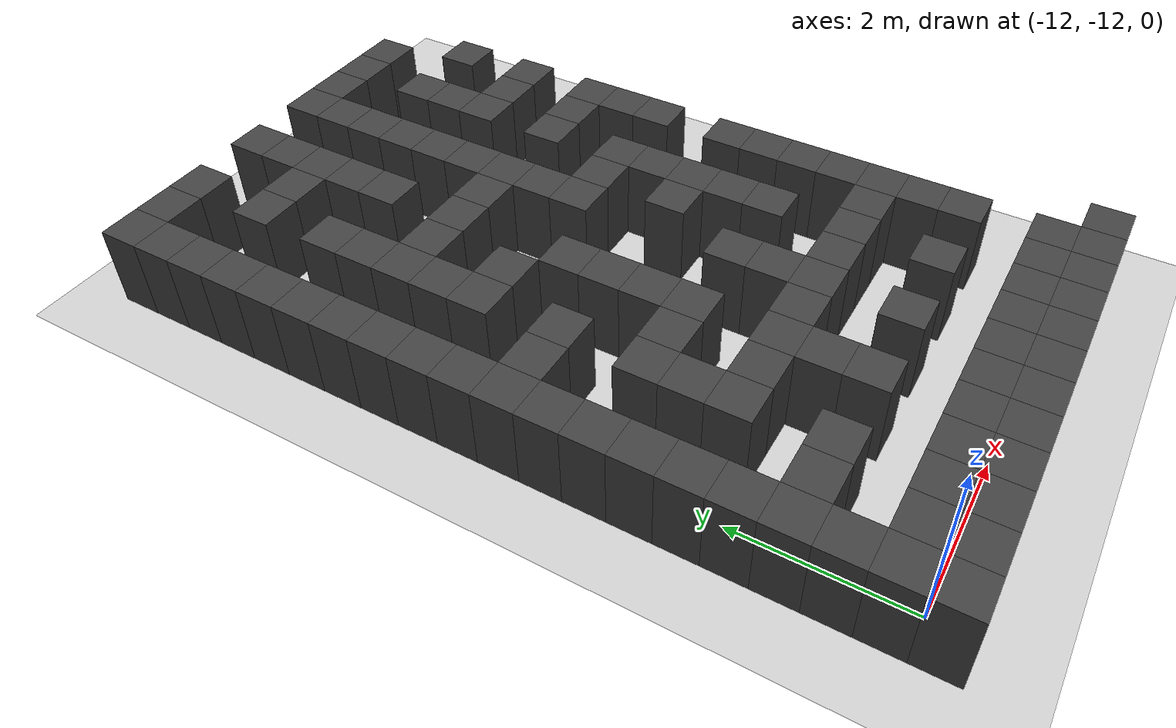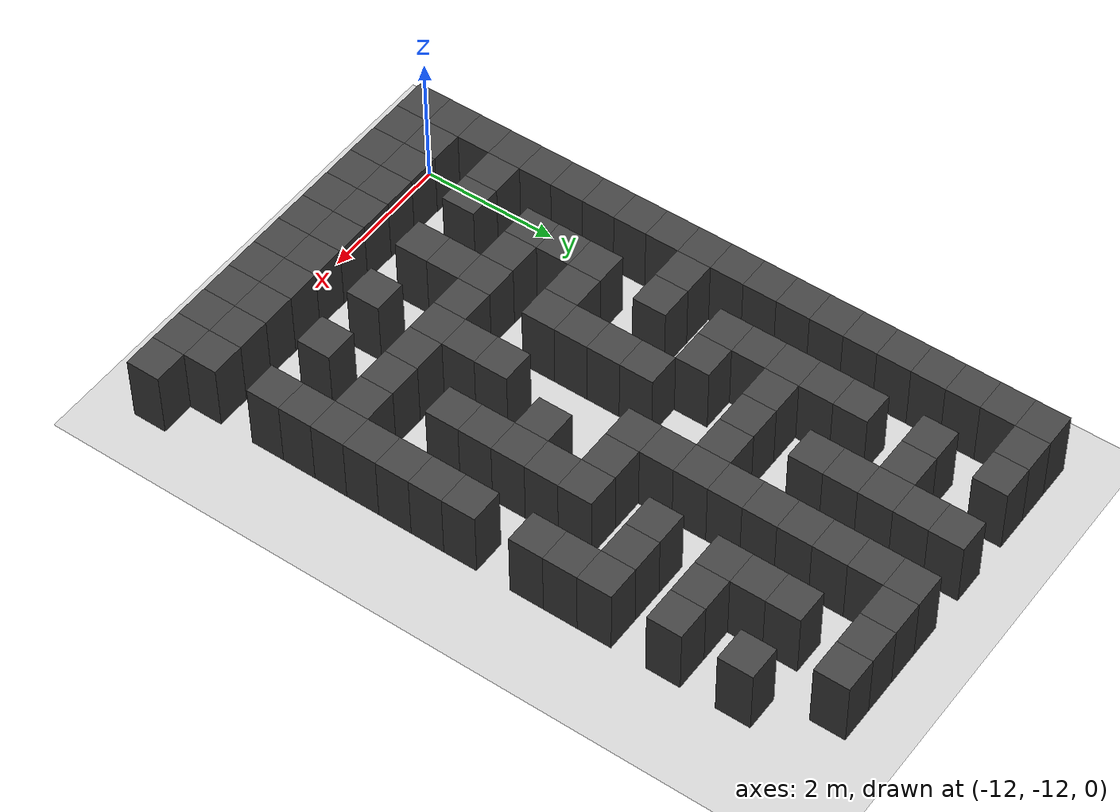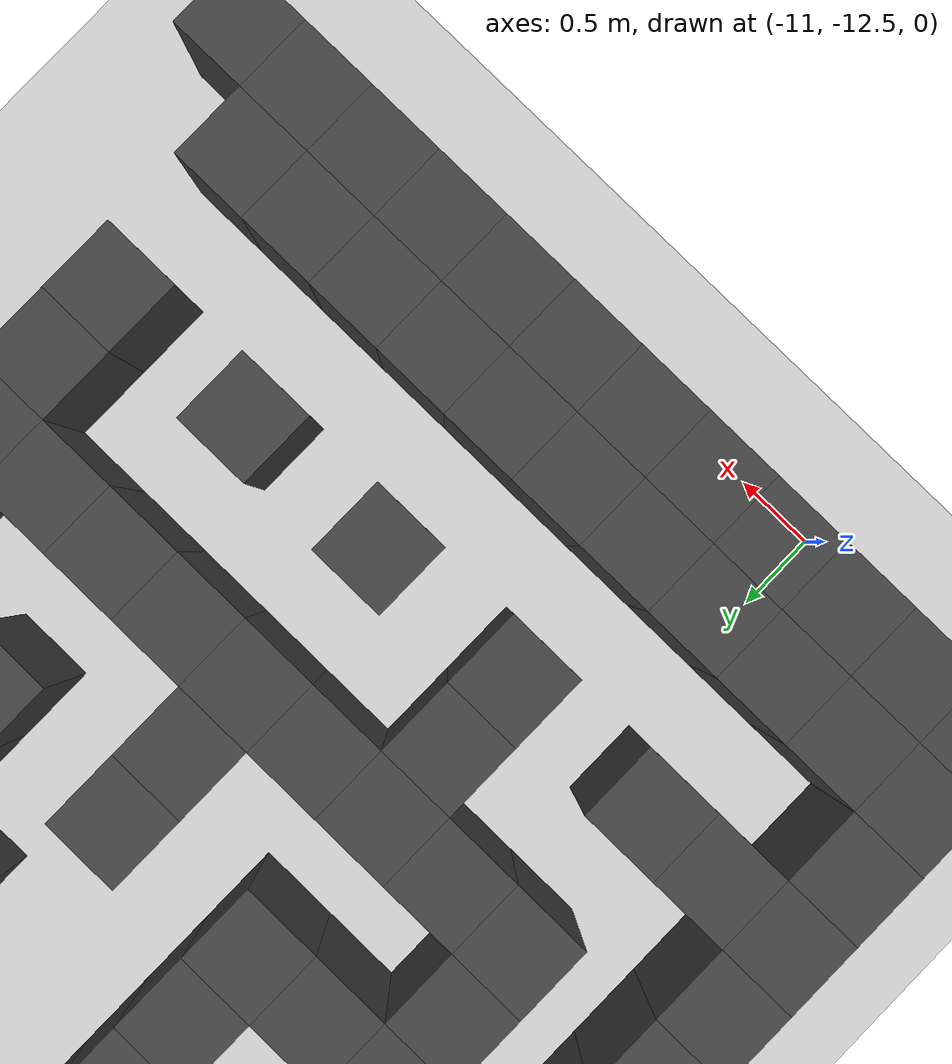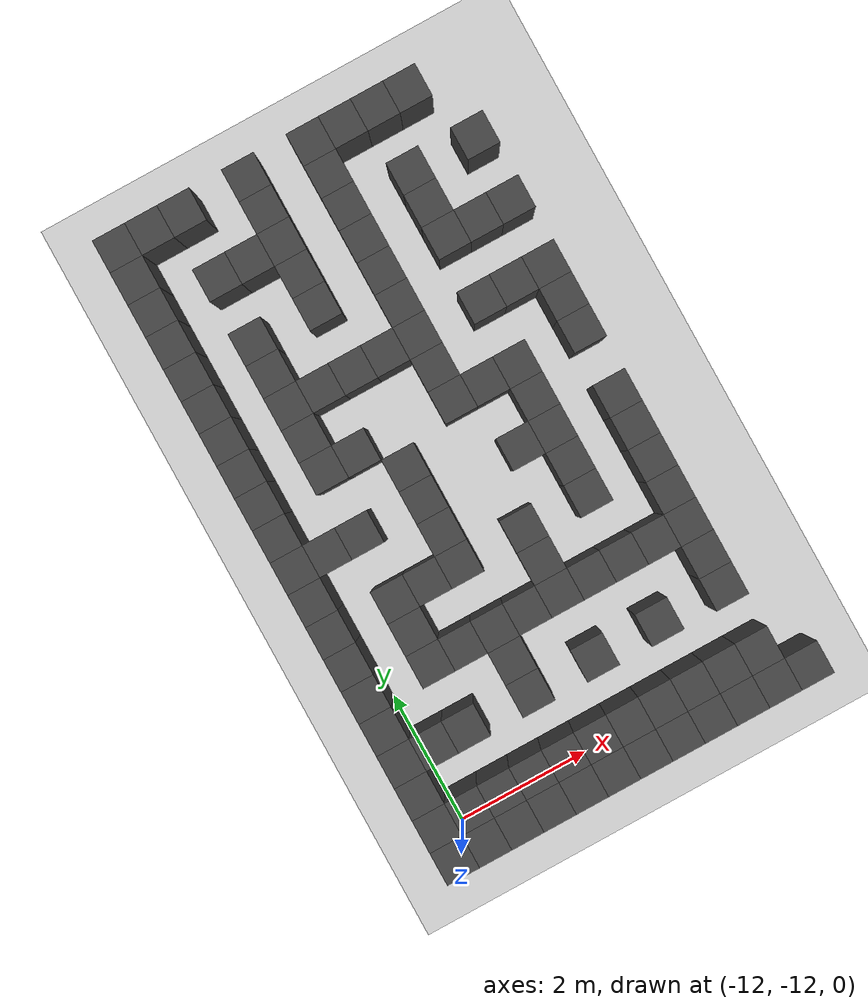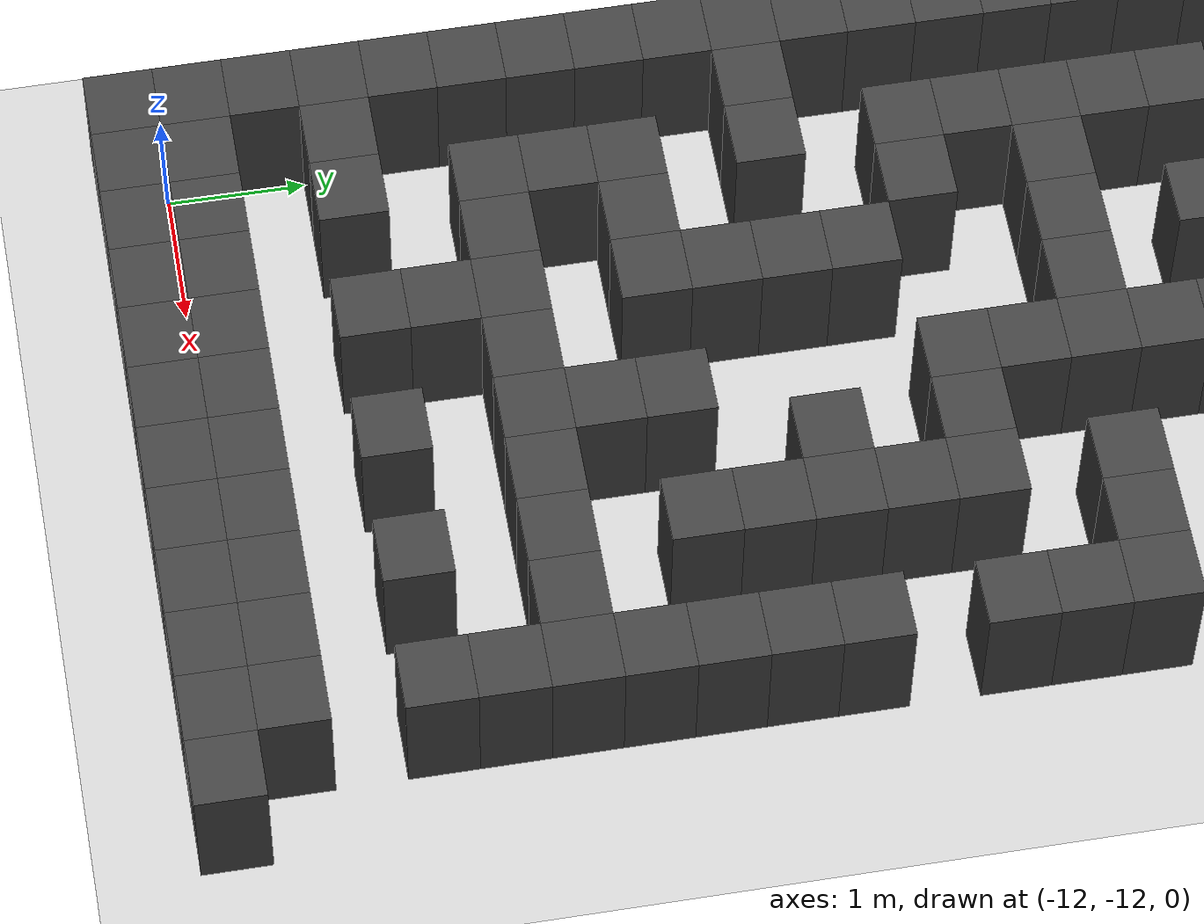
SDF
<sdf version="1.7">
 <world name="map_15497">
  <model name="ground_plane">
   <static>true</static>
   <link name="link">
    <collision name="collision">
     <geometry><plane><normal>0 0 1</normal><size>200 200</size></plane></geometry>
    </collision>
    <visual name="visual">
     <geometry><plane><normal>0 0 1</normal><size>200 200</size></plane></geometry>
     <material><ambient>0.8 0.8 0.8 1</ambient><diffuse>0.8 0.8 0.8 1</diffuse></material>
    </visual>
   </link>
  </model>
  <model name="maze_environment">
   <static>true</static>
   <link name="wall_701">
    <pose>-12.250 -2.750 0.500 0 0 0</pose>
    <collision name="col"><geometry><box><size>0.5 0.5 1.0</size></box></geometry></collision>
    <visual name="vis">
     <geometry><box><size>0.5 0.5 1.0</size></box></geometry>
     <material><ambient>0.15 0.15 0.15 1</ambient><diffuse>0.25 0.25 0.25 1</diffuse></material>
    </visual>
   </link>
   <link name="wall_702">
    <pose>-11.750 -2.750 0.500 0 0 0</pose>
    <collision name="col"><geometry><box><size>0.5 0.5 1.0</size></box></geometry></collision>
    <visual name="vis">
     <geometry><box><size>0.5 0.5 1.0</size></box></geometry>
     <material><ambient>0.15 0.15 0.15 1</ambient><diffuse>0.25 0.25 0.25 1</diffuse></material>
    </visual>
   </link>
   <link name="wall_703">
    <pose>-11.250 -2.750 0.500 0 0 0</pose>
    <collision name="col"><geometry><box><size>0.5 0.5 1.0</size></box></geometry></collision>
    <visual name="vis">
     <geometry><box><size>0.5 0.5 1.0</size></box></geometry>
     <material><ambient>0.15 0.15 0.15 1</ambient><diffuse>0.25 0.25 0.25 1</diffuse></material>
    </visual>
   </link>
   <link name="wall_704">
    <pose>-10.250 -2.750 0.500 0 0 0</pose>
    <collision name="col"><geometry><box><size>0.5 0.5 1.0</size></box></geometry></collision>
    <visual name="vis">
     <geometry><box><size>0.5 0.5 1.0</size></box></geometry>
     <material><ambient>0.15 0.15 0.15 1</ambient><diffuse>0.25 0.25 0.25 1</diffuse></material>
    </visual>
   </link>
   <link name="wall_705">
    <pose>-9.250 -2.750 0.500 0 0 0</pose>
    <collision name="col"><geometry><box><size>0.5 0.5 1.0</size></box></geometry></collision>
    <visual name="vis">
     <geometry><box><size>0.5 0.5 1.0</size></box></geometry>
     <material><ambient>0.15 0.15 0.15 1</ambient><diffuse>0.25 0.25 0.25 1</diffuse></material>
    </visual>
   </link>
   <link name="wall_706">
    <pose>-8.750 -2.750 0.500 0 0 0</pose>
    <collision name="col"><geometry><box><size>0.5 0.5 1.0</size></box></geometry></collision>
    <visual name="vis">
     <geometry><box><size>0.5 0.5 1.0</size></box></geometry>
     <material><ambient>0.15 0.15 0.15 1</ambient><diffuse>0.25 0.25 0.25 1</diffuse></material>
    </visual>
   </link>
   <link name="wall_707">
    <pose>-8.250 -2.750 0.500 0 0 0</pose>
    <collision name="col"><geometry><box><size>0.5 0.5 1.0</size></box></geometry></collision>
    <visual name="vis">
     <geometry><box><size>0.5 0.5 1.0</size></box></geometry>
     <material><ambient>0.15 0.15 0.15 1</ambient><diffuse>0.25 0.25 0.25 1</diffuse></material>
    </visual>
   </link>
   <link name="wall_708">
    <pose>-7.750 -2.750 0.500 0 0 0</pose>
    <collision name="col"><geometry><box><size>0.5 0.5 1.0</size></box></geometry></collision>
    <visual name="vis">
     <geometry><box><size>0.5 0.5 1.0</size></box></geometry>
     <material><ambient>0.15 0.15 0.15 1</ambient><diffuse>0.25 0.25 0.25 1</diffuse></material>
    </visual>
   </link>
   <link name="wall_735">
    <pose>-12.250 -3.250 0.500 0 0 0</pose>
    <collision name="col"><geometry><box><size>0.5 0.5 1.0</size></box></geometry></collision>
    <visual name="vis">
     <geometry><box><size>0.5 0.5 1.0</size></box></geometry>
     <material><ambient>0.15 0.15 0.15 1</ambient><diffuse>0.25 0.25 0.25 1</diffuse></material>
    </visual>
   </link>
   <link name="wall_736">
    <pose>-10.250 -3.250 0.500 0 0 0</pose>
    <collision name="col"><geometry><box><size>0.5 0.5 1.0</size></box></geometry></collision>
    <visual name="vis">
     <geometry><box><size>0.5 0.5 1.0</size></box></geometry>
     <material><ambient>0.15 0.15 0.15 1</ambient><diffuse>0.25 0.25 0.25 1</diffuse></material>
    </visual>
   </link>
   <link name="wall_737">
    <pose>-9.250 -3.250 0.500 0 0 0</pose>
    <collision name="col"><geometry><box><size>0.5 0.5 1.0</size></box></geometry></collision>
    <visual name="vis">
     <geometry><box><size>0.5 0.5 1.0</size></box></geometry>
     <material><ambient>0.15 0.15 0.15 1</ambient><diffuse>0.25 0.25 0.25 1</diffuse></material>
    </visual>
   </link>
   <link name="wall_750">
    <pose>-12.250 -3.750 0.500 0 0 0</pose>
    <collision name="col"><geometry><box><size>0.5 0.5 1.0</size></box></geometry></collision>
    <visual name="vis">
     <geometry><box><size>0.5 0.5 1.0</size></box></geometry>
     <material><ambient>0.15 0.15 0.15 1</ambient><diffuse>0.25 0.25 0.25 1</diffuse></material>
    </visual>
   </link>
   <link name="wall_751">
    <pose>-11.250 -3.750 0.500 0 0 0</pose>
    <collision name="col"><geometry><box><size>0.5 0.5 1.0</size></box></geometry></collision>
    <visual name="vis">
     <geometry><box><size>0.5 0.5 1.0</size></box></geometry>
     <material><ambient>0.15 0.15 0.15 1</ambient><diffuse>0.25 0.25 0.25 1</diffuse></material>
    </visual>
   </link>
   <link name="wall_752">
    <pose>-10.750 -3.750 0.500 0 0 0</pose>
    <collision name="col"><geometry><box><size>0.5 0.5 1.0</size></box></geometry></collision>
    <visual name="vis">
     <geometry><box><size>0.5 0.5 1.0</size></box></geometry>
     <material><ambient>0.15 0.15 0.15 1</ambient><diffuse>0.25 0.25 0.25 1</diffuse></material>
    </visual>
   </link>
   <link name="wall_753">
    <pose>-10.250 -3.750 0.500 0 0 0</pose>
    <collision name="col"><geometry><box><size>0.5 0.5 1.0</size></box></geometry></collision>
    <visual name="vis">
     <geometry><box><size>0.5 0.5 1.0</size></box></geometry>
     <material><ambient>0.15 0.15 0.15 1</ambient><diffuse>0.25 0.25 0.25 1</diffuse></material>
    </visual>
   </link>
   <link name="wall_754">
    <pose>-9.250 -3.750 0.500 0 0 0</pose>
    <collision name="col"><geometry><box><size>0.5 0.5 1.0</size></box></geometry></collision>
    <visual name="vis">
     <geometry><box><size>0.5 0.5 1.0</size></box></geometry>
     <material><ambient>0.15 0.15 0.15 1</ambient><diffuse>0.25 0.25 0.25 1</diffuse></material>
    </visual>
   </link>
   <link name="wall_755">
    <pose>-8.250 -3.750 0.500 0 0 0</pose>
    <collision name="col"><geometry><box><size>0.5 0.5 1.0</size></box></geometry></collision>
    <visual name="vis">
     <geometry><box><size>0.5 0.5 1.0</size></box></geometry>
     <material><ambient>0.15 0.15 0.15 1</ambient><diffuse>0.25 0.25 0.25 1</diffuse></material>
    </visual>
   </link>
   <link name="wall_756">
    <pose>-7.250 -3.750 0.500 0 0 0</pose>
    <collision name="col"><geometry><box><size>0.5 0.5 1.0</size></box></geometry></collision>
    <visual name="vis">
     <geometry><box><size>0.5 0.5 1.0</size></box></geometry>
     <material><ambient>0.15 0.15 0.15 1</ambient><diffuse>0.25 0.25 0.25 1</diffuse></material>
    </visual>
   </link>
   <link name="wall_782">
    <pose>-12.250 -4.250 0.500 0 0 0</pose>
    <collision name="col"><geometry><box><size>0.5 0.5 1.0</size></box></geometry></collision>
    <visual name="vis">
     <geometry><box><size>0.5 0.5 1.0</size></box></geometry>
     <material><ambient>0.15 0.15 0.15 1</ambient><diffuse>0.25 0.25 0.25 1</diffuse></material>
    </visual>
   </link>
   <link name="wall_783">
    <pose>-10.250 -4.250 0.500 0 0 0</pose>
    <collision name="col"><geometry><box><size>0.5 0.5 1.0</size></box></geometry></collision>
    <visual name="vis">
     <geometry><box><size>0.5 0.5 1.0</size></box></geometry>
     <material><ambient>0.15 0.15 0.15 1</ambient><diffuse>0.25 0.25 0.25 1</diffuse></material>
    </visual>
   </link>
   <link name="wall_784">
    <pose>-9.250 -4.250 0.500 0 0 0</pose>
    <collision name="col"><geometry><box><size>0.5 0.5 1.0</size></box></geometry></collision>
    <visual name="vis">
     <geometry><box><size>0.5 0.5 1.0</size></box></geometry>
     <material><ambient>0.15 0.15 0.15 1</ambient><diffuse>0.25 0.25 0.25 1</diffuse></material>
    </visual>
   </link>
   <link name="wall_785">
    <pose>-8.250 -4.250 0.500 0 0 0</pose>
    <collision name="col"><geometry><box><size>0.5 0.5 1.0</size></box></geometry></collision>
    <visual name="vis">
     <geometry><box><size>0.5 0.5 1.0</size></box></geometry>
     <material><ambient>0.15 0.15 0.15 1</ambient><diffuse>0.25 0.25 0.25 1</diffuse></material>
    </visual>
   </link>
   <link name="wall_795">
    <pose>-12.250 -4.750 0.500 0 0 0</pose>
    <collision name="col"><geometry><box><size>0.5 0.5 1.0</size></box></geometry></collision>
    <visual name="vis">
     <geometry><box><size>0.5 0.5 1.0</size></box></geometry>
     <material><ambient>0.15 0.15 0.15 1</ambient><diffuse>0.25 0.25 0.25 1</diffuse></material>
    </visual>
   </link>
   <link name="wall_796">
    <pose>-11.250 -4.750 0.500 0 0 0</pose>
    <collision name="col"><geometry><box><size>0.5 0.5 1.0</size></box></geometry></collision>
    <visual name="vis">
     <geometry><box><size>0.5 0.5 1.0</size></box></geometry>
     <material><ambient>0.15 0.15 0.15 1</ambient><diffuse>0.25 0.25 0.25 1</diffuse></material>
    </visual>
   </link>
   <link name="wall_797">
    <pose>-10.250 -4.750 0.500 0 0 0</pose>
    <collision name="col"><geometry><box><size>0.5 0.5 1.0</size></box></geometry></collision>
    <visual name="vis">
     <geometry><box><size>0.5 0.5 1.0</size></box></geometry>
     <material><ambient>0.15 0.15 0.15 1</ambient><diffuse>0.25 0.25 0.25 1</diffuse></material>
    </visual>
   </link>
   <link name="wall_798">
    <pose>-9.250 -4.750 0.500 0 0 0</pose>
    <collision name="col"><geometry><box><size>0.5 0.5 1.0</size></box></geometry></collision>
    <visual name="vis">
     <geometry><box><size>0.5 0.5 1.0</size></box></geometry>
     <material><ambient>0.15 0.15 0.15 1</ambient><diffuse>0.25 0.25 0.25 1</diffuse></material>
    </visual>
   </link>
   <link name="wall_799">
    <pose>-8.250 -4.750 0.500 0 0 0</pose>
    <collision name="col"><geometry><box><size>0.5 0.5 1.0</size></box></geometry></collision>
    <visual name="vis">
     <geometry><box><size>0.5 0.5 1.0</size></box></geometry>
     <material><ambient>0.15 0.15 0.15 1</ambient><diffuse>0.25 0.25 0.25 1</diffuse></material>
    </visual>
   </link>
   <link name="wall_800">
    <pose>-7.750 -4.750 0.500 0 0 0</pose>
    <collision name="col"><geometry><box><size>0.5 0.5 1.0</size></box></geometry></collision>
    <visual name="vis">
     <geometry><box><size>0.5 0.5 1.0</size></box></geometry>
     <material><ambient>0.15 0.15 0.15 1</ambient><diffuse>0.25 0.25 0.25 1</diffuse></material>
    </visual>
   </link>
   <link name="wall_801">
    <pose>-7.250 -4.750 0.500 0 0 0</pose>
    <collision name="col"><geometry><box><size>0.5 0.5 1.0</size></box></geometry></collision>
    <visual name="vis">
     <geometry><box><size>0.5 0.5 1.0</size></box></geometry>
     <material><ambient>0.15 0.15 0.15 1</ambient><diffuse>0.25 0.25 0.25 1</diffuse></material>
    </visual>
   </link>
   <link name="wall_826">
    <pose>-12.250 -5.250 0.500 0 0 0</pose>
    <collision name="col"><geometry><box><size>0.5 0.5 1.0</size></box></geometry></collision>
    <visual name="vis">
     <geometry><box><size>0.5 0.5 1.0</size></box></geometry>
     <material><ambient>0.15 0.15 0.15 1</ambient><diffuse>0.25 0.25 0.25 1</diffuse></material>
    </visual>
   </link>
   <link name="wall_827">
    <pose>-11.250 -5.250 0.500 0 0 0</pose>
    <collision name="col"><geometry><box><size>0.5 0.5 1.0</size></box></geometry></collision>
    <visual name="vis">
     <geometry><box><size>0.5 0.5 1.0</size></box></geometry>
     <material><ambient>0.15 0.15 0.15 1</ambient><diffuse>0.25 0.25 0.25 1</diffuse></material>
    </visual>
   </link>
   <link name="wall_828">
    <pose>-9.250 -5.250 0.500 0 0 0</pose>
    <collision name="col"><geometry><box><size>0.5 0.5 1.0</size></box></geometry></collision>
    <visual name="vis">
     <geometry><box><size>0.5 0.5 1.0</size></box></geometry>
     <material><ambient>0.15 0.15 0.15 1</ambient><diffuse>0.25 0.25 0.25 1</diffuse></material>
    </visual>
   </link>
   <link name="wall_838">
    <pose>-12.250 -5.750 0.500 0 0 0</pose>
    <collision name="col"><geometry><box><size>0.5 0.5 1.0</size></box></geometry></collision>
    <visual name="vis">
     <geometry><box><size>0.5 0.5 1.0</size></box></geometry>
     <material><ambient>0.15 0.15 0.15 1</ambient><diffuse>0.25 0.25 0.25 1</diffuse></material>
    </visual>
   </link>
   <link name="wall_839">
    <pose>-11.250 -5.750 0.500 0 0 0</pose>
    <collision name="col"><geometry><box><size>0.5 0.5 1.0</size></box></geometry></collision>
    <visual name="vis">
     <geometry><box><size>0.5 0.5 1.0</size></box></geometry>
     <material><ambient>0.15 0.15 0.15 1</ambient><diffuse>0.25 0.25 0.25 1</diffuse></material>
    </visual>
   </link>
   <link name="wall_840">
    <pose>-10.750 -5.750 0.500 0 0 0</pose>
    <collision name="col"><geometry><box><size>0.5 0.5 1.0</size></box></geometry></collision>
    <visual name="vis">
     <geometry><box><size>0.5 0.5 1.0</size></box></geometry>
     <material><ambient>0.15 0.15 0.15 1</ambient><diffuse>0.25 0.25 0.25 1</diffuse></material>
    </visual>
   </link>
   <link name="wall_841">
    <pose>-10.250 -5.750 0.500 0 0 0</pose>
    <collision name="col"><geometry><box><size>0.5 0.5 1.0</size></box></geometry></collision>
    <visual name="vis">
     <geometry><box><size>0.5 0.5 1.0</size></box></geometry>
     <material><ambient>0.15 0.15 0.15 1</ambient><diffuse>0.25 0.25 0.25 1</diffuse></material>
    </visual>
   </link>
   <link name="wall_842">
    <pose>-9.750 -5.750 0.500 0 0 0</pose>
    <collision name="col"><geometry><box><size>0.5 0.5 1.0</size></box></geometry></collision>
    <visual name="vis">
     <geometry><box><size>0.5 0.5 1.0</size></box></geometry>
     <material><ambient>0.15 0.15 0.15 1</ambient><diffuse>0.25 0.25 0.25 1</diffuse></material>
    </visual>
   </link>
   <link name="wall_843">
    <pose>-9.250 -5.750 0.500 0 0 0</pose>
    <collision name="col"><geometry><box><size>0.5 0.5 1.0</size></box></geometry></collision>
    <visual name="vis">
     <geometry><box><size>0.5 0.5 1.0</size></box></geometry>
     <material><ambient>0.15 0.15 0.15 1</ambient><diffuse>0.25 0.25 0.25 1</diffuse></material>
    </visual>
   </link>
   <link name="wall_844">
    <pose>-8.250 -5.750 0.500 0 0 0</pose>
    <collision name="col"><geometry><box><size>0.5 0.5 1.0</size></box></geometry></collision>
    <visual name="vis">
     <geometry><box><size>0.5 0.5 1.0</size></box></geometry>
     <material><ambient>0.15 0.15 0.15 1</ambient><diffuse>0.25 0.25 0.25 1</diffuse></material>
    </visual>
   </link>
   <link name="wall_845">
    <pose>-7.750 -5.750 0.500 0 0 0</pose>
    <collision name="col"><geometry><box><size>0.5 0.5 1.0</size></box></geometry></collision>
    <visual name="vis">
     <geometry><box><size>0.5 0.5 1.0</size></box></geometry>
     <material><ambient>0.15 0.15 0.15 1</ambient><diffuse>0.25 0.25 0.25 1</diffuse></material>
    </visual>
   </link>
   <link name="wall_846">
    <pose>-7.250 -5.750 0.500 0 0 0</pose>
    <collision name="col"><geometry><box><size>0.5 0.5 1.0</size></box></geometry></collision>
    <visual name="vis">
     <geometry><box><size>0.5 0.5 1.0</size></box></geometry>
     <material><ambient>0.15 0.15 0.15 1</ambient><diffuse>0.25 0.25 0.25 1</diffuse></material>
    </visual>
   </link>
   <link name="wall_870">
    <pose>-12.250 -6.250 0.500 0 0 0</pose>
    <collision name="col"><geometry><box><size>0.5 0.5 1.0</size></box></geometry></collision>
    <visual name="vis">
     <geometry><box><size>0.5 0.5 1.0</size></box></geometry>
     <material><ambient>0.15 0.15 0.15 1</ambient><diffuse>0.25 0.25 0.25 1</diffuse></material>
    </visual>
   </link>
   <link name="wall_871">
    <pose>-11.250 -6.250 0.500 0 0 0</pose>
    <collision name="col"><geometry><box><size>0.5 0.5 1.0</size></box></geometry></collision>
    <visual name="vis">
     <geometry><box><size>0.5 0.5 1.0</size></box></geometry>
     <material><ambient>0.15 0.15 0.15 1</ambient><diffuse>0.25 0.25 0.25 1</diffuse></material>
    </visual>
   </link>
   <link name="wall_872">
    <pose>-9.250 -6.250 0.500 0 0 0</pose>
    <collision name="col"><geometry><box><size>0.5 0.5 1.0</size></box></geometry></collision>
    <visual name="vis">
     <geometry><box><size>0.5 0.5 1.0</size></box></geometry>
     <material><ambient>0.15 0.15 0.15 1</ambient><diffuse>0.25 0.25 0.25 1</diffuse></material>
    </visual>
   </link>
   <link name="wall_873">
    <pose>-7.250 -6.250 0.500 0 0 0</pose>
    <collision name="col"><geometry><box><size>0.5 0.5 1.0</size></box></geometry></collision>
    <visual name="vis">
     <geometry><box><size>0.5 0.5 1.0</size></box></geometry>
     <material><ambient>0.15 0.15 0.15 1</ambient><diffuse>0.25 0.25 0.25 1</diffuse></material>
    </visual>
   </link>
   <link name="wall_884">
    <pose>-12.250 -6.750 0.500 0 0 0</pose>
    <collision name="col"><geometry><box><size>0.5 0.5 1.0</size></box></geometry></collision>
    <visual name="vis">
     <geometry><box><size>0.5 0.5 1.0</size></box></geometry>
     <material><ambient>0.15 0.15 0.15 1</ambient><diffuse>0.25 0.25 0.25 1</diffuse></material>
    </visual>
   </link>
   <link name="wall_885">
    <pose>-11.250 -6.750 0.500 0 0 0</pose>
    <collision name="col"><geometry><box><size>0.5 0.5 1.0</size></box></geometry></collision>
    <visual name="vis">
     <geometry><box><size>0.5 0.5 1.0</size></box></geometry>
     <material><ambient>0.15 0.15 0.15 1</ambient><diffuse>0.25 0.25 0.25 1</diffuse></material>
    </visual>
   </link>
   <link name="wall_886">
    <pose>-10.750 -6.750 0.500 0 0 0</pose>
    <collision name="col"><geometry><box><size>0.5 0.5 1.0</size></box></geometry></collision>
    <visual name="vis">
     <geometry><box><size>0.5 0.5 1.0</size></box></geometry>
     <material><ambient>0.15 0.15 0.15 1</ambient><diffuse>0.25 0.25 0.25 1</diffuse></material>
    </visual>
   </link>
   <link name="wall_887">
    <pose>-9.250 -6.750 0.500 0 0 0</pose>
    <collision name="col"><geometry><box><size>0.5 0.5 1.0</size></box></geometry></collision>
    <visual name="vis">
     <geometry><box><size>0.5 0.5 1.0</size></box></geometry>
     <material><ambient>0.15 0.15 0.15 1</ambient><diffuse>0.25 0.25 0.25 1</diffuse></material>
    </visual>
   </link>
   <link name="wall_888">
    <pose>-8.750 -6.750 0.500 0 0 0</pose>
    <collision name="col"><geometry><box><size>0.5 0.5 1.0</size></box></geometry></collision>
    <visual name="vis">
     <geometry><box><size>0.5 0.5 1.0</size></box></geometry>
     <material><ambient>0.15 0.15 0.15 1</ambient><diffuse>0.25 0.25 0.25 1</diffuse></material>
    </visual>
   </link>
   <link name="wall_889">
    <pose>-8.250 -6.750 0.500 0 0 0</pose>
    <collision name="col"><geometry><box><size>0.5 0.5 1.0</size></box></geometry></collision>
    <visual name="vis">
     <geometry><box><size>0.5 0.5 1.0</size></box></geometry>
     <material><ambient>0.15 0.15 0.15 1</ambient><diffuse>0.25 0.25 0.25 1</diffuse></material>
    </visual>
   </link>
   <link name="wall_890">
    <pose>-7.250 -6.750 0.500 0 0 0</pose>
    <collision name="col"><geometry><box><size>0.5 0.5 1.0</size></box></geometry></collision>
    <visual name="vis">
     <geometry><box><size>0.5 0.5 1.0</size></box></geometry>
     <material><ambient>0.15 0.15 0.15 1</ambient><diffuse>0.25 0.25 0.25 1</diffuse></material>
    </visual>
   </link>
   <link name="wall_915">
    <pose>-12.250 -7.250 0.500 0 0 0</pose>
    <collision name="col"><geometry><box><size>0.5 0.5 1.0</size></box></geometry></collision>
    <visual name="vis">
     <geometry><box><size>0.5 0.5 1.0</size></box></geometry>
     <material><ambient>0.15 0.15 0.15 1</ambient><diffuse>0.25 0.25 0.25 1</diffuse></material>
    </visual>
   </link>
   <link name="wall_916">
    <pose>-10.250 -7.250 0.500 0 0 0</pose>
    <collision name="col"><geometry><box><size>0.5 0.5 1.0</size></box></geometry></collision>
    <visual name="vis">
     <geometry><box><size>0.5 0.5 1.0</size></box></geometry>
     <material><ambient>0.15 0.15 0.15 1</ambient><diffuse>0.25 0.25 0.25 1</diffuse></material>
    </visual>
   </link>
   <link name="wall_917">
    <pose>-8.250 -7.250 0.500 0 0 0</pose>
    <collision name="col"><geometry><box><size>0.5 0.5 1.0</size></box></geometry></collision>
    <visual name="vis">
     <geometry><box><size>0.5 0.5 1.0</size></box></geometry>
     <material><ambient>0.15 0.15 0.15 1</ambient><diffuse>0.25 0.25 0.25 1</diffuse></material>
    </visual>
   </link>
   <link name="wall_931">
    <pose>-12.250 -7.750 0.500 0 0 0</pose>
    <collision name="col"><geometry><box><size>0.5 0.5 1.0</size></box></geometry></collision>
    <visual name="vis">
     <geometry><box><size>0.5 0.5 1.0</size></box></geometry>
     <material><ambient>0.15 0.15 0.15 1</ambient><diffuse>0.25 0.25 0.25 1</diffuse></material>
    </visual>
   </link>
   <link name="wall_932">
    <pose>-11.750 -7.750 0.500 0 0 0</pose>
    <collision name="col"><geometry><box><size>0.5 0.5 1.0</size></box></geometry></collision>
    <visual name="vis">
     <geometry><box><size>0.5 0.5 1.0</size></box></geometry>
     <material><ambient>0.15 0.15 0.15 1</ambient><diffuse>0.25 0.25 0.25 1</diffuse></material>
    </visual>
   </link>
   <link name="wall_933">
    <pose>-11.250 -7.750 0.500 0 0 0</pose>
    <collision name="col"><geometry><box><size>0.5 0.5 1.0</size></box></geometry></collision>
    <visual name="vis">
     <geometry><box><size>0.5 0.5 1.0</size></box></geometry>
     <material><ambient>0.15 0.15 0.15 1</ambient><diffuse>0.25 0.25 0.25 1</diffuse></material>
    </visual>
   </link>
   <link name="wall_934">
    <pose>-10.250 -7.750 0.500 0 0 0</pose>
    <collision name="col"><geometry><box><size>0.5 0.5 1.0</size></box></geometry></collision>
    <visual name="vis">
     <geometry><box><size>0.5 0.5 1.0</size></box></geometry>
     <material><ambient>0.15 0.15 0.15 1</ambient><diffuse>0.25 0.25 0.25 1</diffuse></material>
    </visual>
   </link>
   <link name="wall_935">
    <pose>-8.750 -7.750 0.500 0 0 0</pose>
    <collision name="col"><geometry><box><size>0.5 0.5 1.0</size></box></geometry></collision>
    <visual name="vis">
     <geometry><box><size>0.5 0.5 1.0</size></box></geometry>
     <material><ambient>0.15 0.15 0.15 1</ambient><diffuse>0.25 0.25 0.25 1</diffuse></material>
    </visual>
   </link>
   <link name="wall_936">
    <pose>-8.250 -7.750 0.500 0 0 0</pose>
    <collision name="col"><geometry><box><size>0.5 0.5 1.0</size></box></geometry></collision>
    <visual name="vis">
     <geometry><box><size>0.5 0.5 1.0</size></box></geometry>
     <material><ambient>0.15 0.15 0.15 1</ambient><diffuse>0.25 0.25 0.25 1</diffuse></material>
    </visual>
   </link>
   <link name="wall_937">
    <pose>-7.250 -7.750 0.500 0 0 0</pose>
    <collision name="col"><geometry><box><size>0.5 0.5 1.0</size></box></geometry></collision>
    <visual name="vis">
     <geometry><box><size>0.5 0.5 1.0</size></box></geometry>
     <material><ambient>0.15 0.15 0.15 1</ambient><diffuse>0.25 0.25 0.25 1</diffuse></material>
    </visual>
   </link>
   <link name="wall_963">
    <pose>-12.250 -8.250 0.500 0 0 0</pose>
    <collision name="col"><geometry><box><size>0.5 0.5 1.0</size></box></geometry></collision>
    <visual name="vis">
     <geometry><box><size>0.5 0.5 1.0</size></box></geometry>
     <material><ambient>0.15 0.15 0.15 1</ambient><diffuse>0.25 0.25 0.25 1</diffuse></material>
    </visual>
   </link>
   <link name="wall_964">
    <pose>-10.250 -8.250 0.500 0 0 0</pose>
    <collision name="col"><geometry><box><size>0.5 0.5 1.0</size></box></geometry></collision>
    <visual name="vis">
     <geometry><box><size>0.5 0.5 1.0</size></box></geometry>
     <material><ambient>0.15 0.15 0.15 1</ambient><diffuse>0.25 0.25 0.25 1</diffuse></material>
    </visual>
   </link>
   <link name="wall_965">
    <pose>-8.250 -8.250 0.500 0 0 0</pose>
    <collision name="col"><geometry><box><size>0.5 0.5 1.0</size></box></geometry></collision>
    <visual name="vis">
     <geometry><box><size>0.5 0.5 1.0</size></box></geometry>
     <material><ambient>0.15 0.15 0.15 1</ambient><diffuse>0.25 0.25 0.25 1</diffuse></material>
    </visual>
   </link>
   <link name="wall_966">
    <pose>-7.250 -8.250 0.500 0 0 0</pose>
    <collision name="col"><geometry><box><size>0.5 0.5 1.0</size></box></geometry></collision>
    <visual name="vis">
     <geometry><box><size>0.5 0.5 1.0</size></box></geometry>
     <material><ambient>0.15 0.15 0.15 1</ambient><diffuse>0.25 0.25 0.25 1</diffuse></material>
    </visual>
   </link>
   <link name="wall_978">
    <pose>-12.250 -8.750 0.500 0 0 0</pose>
    <collision name="col"><geometry><box><size>0.5 0.5 1.0</size></box></geometry></collision>
    <visual name="vis">
     <geometry><box><size>0.5 0.5 1.0</size></box></geometry>
     <material><ambient>0.15 0.15 0.15 1</ambient><diffuse>0.25 0.25 0.25 1</diffuse></material>
    </visual>
   </link>
   <link name="wall_979">
    <pose>-11.250 -8.750 0.500 0 0 0</pose>
    <collision name="col"><geometry><box><size>0.5 0.5 1.0</size></box></geometry></collision>
    <visual name="vis">
     <geometry><box><size>0.5 0.5 1.0</size></box></geometry>
     <material><ambient>0.15 0.15 0.15 1</ambient><diffuse>0.25 0.25 0.25 1</diffuse></material>
    </visual>
   </link>
   <link name="wall_980">
    <pose>-10.750 -8.750 0.500 0 0 0</pose>
    <collision name="col"><geometry><box><size>0.5 0.5 1.0</size></box></geometry></collision>
    <visual name="vis">
     <geometry><box><size>0.5 0.5 1.0</size></box></geometry>
     <material><ambient>0.15 0.15 0.15 1</ambient><diffuse>0.25 0.25 0.25 1</diffuse></material>
    </visual>
   </link>
   <link name="wall_981">
    <pose>-10.250 -8.750 0.500 0 0 0</pose>
    <collision name="col"><geometry><box><size>0.5 0.5 1.0</size></box></geometry></collision>
    <visual name="vis">
     <geometry><box><size>0.5 0.5 1.0</size></box></geometry>
     <material><ambient>0.15 0.15 0.15 1</ambient><diffuse>0.25 0.25 0.25 1</diffuse></material>
    </visual>
   </link>
   <link name="wall_982">
    <pose>-9.250 -8.750 0.500 0 0 0</pose>
    <collision name="col"><geometry><box><size>0.5 0.5 1.0</size></box></geometry></collision>
    <visual name="vis">
     <geometry><box><size>0.5 0.5 1.0</size></box></geometry>
     <material><ambient>0.15 0.15 0.15 1</ambient><diffuse>0.25 0.25 0.25 1</diffuse></material>
    </visual>
   </link>
   <link name="wall_983">
    <pose>-8.250 -8.750 0.500 0 0 0</pose>
    <collision name="col"><geometry><box><size>0.5 0.5 1.0</size></box></geometry></collision>
    <visual name="vis">
     <geometry><box><size>0.5 0.5 1.0</size></box></geometry>
     <material><ambient>0.15 0.15 0.15 1</ambient><diffuse>0.25 0.25 0.25 1</diffuse></material>
    </visual>
   </link>
   <link name="wall_984">
    <pose>-7.250 -8.750 0.500 0 0 0</pose>
    <collision name="col"><geometry><box><size>0.5 0.5 1.0</size></box></geometry></collision>
    <visual name="vis">
     <geometry><box><size>0.5 0.5 1.0</size></box></geometry>
     <material><ambient>0.15 0.15 0.15 1</ambient><diffuse>0.25 0.25 0.25 1</diffuse></material>
    </visual>
   </link>
   <link name="wall_1010">
    <pose>-12.250 -9.250 0.500 0 0 0</pose>
    <collision name="col"><geometry><box><size>0.5 0.5 1.0</size></box></geometry></collision>
    <visual name="vis">
     <geometry><box><size>0.5 0.5 1.0</size></box></geometry>
     <material><ambient>0.15 0.15 0.15 1</ambient><diffuse>0.25 0.25 0.25 1</diffuse></material>
    </visual>
   </link>
   <link name="wall_1011">
    <pose>-11.250 -9.250 0.500 0 0 0</pose>
    <collision name="col"><geometry><box><size>0.5 0.5 1.0</size></box></geometry></collision>
    <visual name="vis">
     <geometry><box><size>0.5 0.5 1.0</size></box></geometry>
     <material><ambient>0.15 0.15 0.15 1</ambient><diffuse>0.25 0.25 0.25 1</diffuse></material>
    </visual>
   </link>
   <link name="wall_1012">
    <pose>-9.250 -9.250 0.500 0 0 0</pose>
    <collision name="col"><geometry><box><size>0.5 0.5 1.0</size></box></geometry></collision>
    <visual name="vis">
     <geometry><box><size>0.5 0.5 1.0</size></box></geometry>
     <material><ambient>0.15 0.15 0.15 1</ambient><diffuse>0.25 0.25 0.25 1</diffuse></material>
    </visual>
   </link>
   <link name="wall_1013">
    <pose>-7.250 -9.250 0.500 0 0 0</pose>
    <collision name="col"><geometry><box><size>0.5 0.5 1.0</size></box></geometry></collision>
    <visual name="vis">
     <geometry><box><size>0.5 0.5 1.0</size></box></geometry>
     <material><ambient>0.15 0.15 0.15 1</ambient><diffuse>0.25 0.25 0.25 1</diffuse></material>
    </visual>
   </link>
   <link name="wall_1023">
    <pose>-12.250 -9.750 0.500 0 0 0</pose>
    <collision name="col"><geometry><box><size>0.5 0.5 1.0</size></box></geometry></collision>
    <visual name="vis">
     <geometry><box><size>0.5 0.5 1.0</size></box></geometry>
     <material><ambient>0.15 0.15 0.15 1</ambient><diffuse>0.25 0.25 0.25 1</diffuse></material>
    </visual>
   </link>
   <link name="wall_1024">
    <pose>-11.250 -9.750 0.500 0 0 0</pose>
    <collision name="col"><geometry><box><size>0.5 0.5 1.0</size></box></geometry></collision>
    <visual name="vis">
     <geometry><box><size>0.5 0.5 1.0</size></box></geometry>
     <material><ambient>0.15 0.15 0.15 1</ambient><diffuse>0.25 0.25 0.25 1</diffuse></material>
    </visual>
   </link>
   <link name="wall_1025">
    <pose>-10.750 -9.750 0.500 0 0 0</pose>
    <collision name="col"><geometry><box><size>0.5 0.5 1.0</size></box></geometry></collision>
    <visual name="vis">
     <geometry><box><size>0.5 0.5 1.0</size></box></geometry>
     <material><ambient>0.15 0.15 0.15 1</ambient><diffuse>0.25 0.25 0.25 1</diffuse></material>
    </visual>
   </link>
   <link name="wall_1026">
    <pose>-10.250 -9.750 0.500 0 0 0</pose>
    <collision name="col"><geometry><box><size>0.5 0.5 1.0</size></box></geometry></collision>
    <visual name="vis">
     <geometry><box><size>0.5 0.5 1.0</size></box></geometry>
     <material><ambient>0.15 0.15 0.15 1</ambient><diffuse>0.25 0.25 0.25 1</diffuse></material>
    </visual>
   </link>
   <link name="wall_1027">
    <pose>-9.750 -9.750 0.500 0 0 0</pose>
    <collision name="col"><geometry><box><size>0.5 0.5 1.0</size></box></geometry></collision>
    <visual name="vis">
     <geometry><box><size>0.5 0.5 1.0</size></box></geometry>
     <material><ambient>0.15 0.15 0.15 1</ambient><diffuse>0.25 0.25 0.25 1</diffuse></material>
    </visual>
   </link>
   <link name="wall_1028">
    <pose>-9.250 -9.750 0.500 0 0 0</pose>
    <collision name="col"><geometry><box><size>0.5 0.5 1.0</size></box></geometry></collision>
    <visual name="vis">
     <geometry><box><size>0.5 0.5 1.0</size></box></geometry>
     <material><ambient>0.15 0.15 0.15 1</ambient><diffuse>0.25 0.25 0.25 1</diffuse></material>
    </visual>
   </link>
   <link name="wall_1029">
    <pose>-8.750 -9.750 0.500 0 0 0</pose>
    <collision name="col"><geometry><box><size>0.5 0.5 1.0</size></box></geometry></collision>
    <visual name="vis">
     <geometry><box><size>0.5 0.5 1.0</size></box></geometry>
     <material><ambient>0.15 0.15 0.15 1</ambient><diffuse>0.25 0.25 0.25 1</diffuse></material>
    </visual>
   </link>
   <link name="wall_1030">
    <pose>-8.250 -9.750 0.500 0 0 0</pose>
    <collision name="col"><geometry><box><size>0.5 0.5 1.0</size></box></geometry></collision>
    <visual name="vis">
     <geometry><box><size>0.5 0.5 1.0</size></box></geometry>
     <material><ambient>0.15 0.15 0.15 1</ambient><diffuse>0.25 0.25 0.25 1</diffuse></material>
    </visual>
   </link>
   <link name="wall_1031">
    <pose>-7.750 -9.750 0.500 0 0 0</pose>
    <collision name="col"><geometry><box><size>0.5 0.5 1.0</size></box></geometry></collision>
    <visual name="vis">
     <geometry><box><size>0.5 0.5 1.0</size></box></geometry>
     <material><ambient>0.15 0.15 0.15 1</ambient><diffuse>0.25 0.25 0.25 1</diffuse></material>
    </visual>
   </link>
   <link name="wall_1032">
    <pose>-7.250 -9.750 0.500 0 0 0</pose>
    <collision name="col"><geometry><box><size>0.5 0.5 1.0</size></box></geometry></collision>
    <visual name="vis">
     <geometry><box><size>0.5 0.5 1.0</size></box></geometry>
     <material><ambient>0.15 0.15 0.15 1</ambient><diffuse>0.25 0.25 0.25 1</diffuse></material>
    </visual>
   </link>
   <link name="wall_1063">
    <pose>-12.250 -10.250 0.500 0 0 0</pose>
    <collision name="col"><geometry><box><size>0.5 0.5 1.0</size></box></geometry></collision>
    <visual name="vis">
     <geometry><box><size>0.5 0.5 1.0</size></box></geometry>
     <material><ambient>0.15 0.15 0.15 1</ambient><diffuse>0.25 0.25 0.25 1</diffuse></material>
    </visual>
   </link>
   <link name="wall_1064">
    <pose>-10.250 -10.250 0.500 0 0 0</pose>
    <collision name="col"><geometry><box><size>0.5 0.5 1.0</size></box></geometry></collision>
    <visual name="vis">
     <geometry><box><size>0.5 0.5 1.0</size></box></geometry>
     <material><ambient>0.15 0.15 0.15 1</ambient><diffuse>0.25 0.25 0.25 1</diffuse></material>
    </visual>
   </link>
   <link name="wall_1065">
    <pose>-7.250 -10.250 0.500 0 0 0</pose>
    <collision name="col"><geometry><box><size>0.5 0.5 1.0</size></box></geometry></collision>
    <visual name="vis">
     <geometry><box><size>0.5 0.5 1.0</size></box></geometry>
     <material><ambient>0.15 0.15 0.15 1</ambient><diffuse>0.25 0.25 0.25 1</diffuse></material>
    </visual>
   </link>
   <link name="wall_1075">
    <pose>-12.250 -10.750 0.500 0 0 0</pose>
    <collision name="col"><geometry><box><size>0.5 0.5 1.0</size></box></geometry></collision>
    <visual name="vis">
     <geometry><box><size>0.5 0.5 1.0</size></box></geometry>
     <material><ambient>0.15 0.15 0.15 1</ambient><diffuse>0.25 0.25 0.25 1</diffuse></material>
    </visual>
   </link>
   <link name="wall_1076">
    <pose>-11.750 -10.750 0.500 0 0 0</pose>
    <collision name="col"><geometry><box><size>0.5 0.5 1.0</size></box></geometry></collision>
    <visual name="vis">
     <geometry><box><size>0.5 0.5 1.0</size></box></geometry>
     <material><ambient>0.15 0.15 0.15 1</ambient><diffuse>0.25 0.25 0.25 1</diffuse></material>
    </visual>
   </link>
   <link name="wall_1077">
    <pose>-11.250 -10.750 0.500 0 0 0</pose>
    <collision name="col"><geometry><box><size>0.5 0.5 1.0</size></box></geometry></collision>
    <visual name="vis">
     <geometry><box><size>0.5 0.5 1.0</size></box></geometry>
     <material><ambient>0.15 0.15 0.15 1</ambient><diffuse>0.25 0.25 0.25 1</diffuse></material>
    </visual>
   </link>
   <link name="wall_1078">
    <pose>-10.250 -10.750 0.500 0 0 0</pose>
    <collision name="col"><geometry><box><size>0.5 0.5 1.0</size></box></geometry></collision>
    <visual name="vis">
     <geometry><box><size>0.5 0.5 1.0</size></box></geometry>
     <material><ambient>0.15 0.15 0.15 1</ambient><diffuse>0.25 0.25 0.25 1</diffuse></material>
    </visual>
   </link>
   <link name="wall_1079">
    <pose>-9.250 -10.750 0.500 0 0 0</pose>
    <collision name="col"><geometry><box><size>0.5 0.5 1.0</size></box></geometry></collision>
    <visual name="vis">
     <geometry><box><size>0.5 0.5 1.0</size></box></geometry>
     <material><ambient>0.15 0.15 0.15 1</ambient><diffuse>0.25 0.25 0.25 1</diffuse></material>
    </visual>
   </link>
   <link name="wall_1080">
    <pose>-8.250 -10.750 0.500 0 0 0</pose>
    <collision name="col"><geometry><box><size>0.5 0.5 1.0</size></box></geometry></collision>
    <visual name="vis">
     <geometry><box><size>0.5 0.5 1.0</size></box></geometry>
     <material><ambient>0.15 0.15 0.15 1</ambient><diffuse>0.25 0.25 0.25 1</diffuse></material>
    </visual>
   </link>
   <link name="wall_1081">
    <pose>-7.250 -10.750 0.500 0 0 0</pose>
    <collision name="col"><geometry><box><size>0.5 0.5 1.0</size></box></geometry></collision>
    <visual name="vis">
     <geometry><box><size>0.5 0.5 1.0</size></box></geometry>
     <material><ambient>0.15 0.15 0.15 1</ambient><diffuse>0.25 0.25 0.25 1</diffuse></material>
    </visual>
   </link>
   <link name="wall_1105">
    <pose>-12.250 -11.250 0.500 0 0 0</pose>
    <collision name="col"><geometry><box><size>0.5 0.5 1.0</size></box></geometry></collision>
    <visual name="vis">
     <geometry><box><size>0.5 0.5 1.0</size></box></geometry>
     <material><ambient>0.15 0.15 0.15 1</ambient><diffuse>0.25 0.25 0.25 1</diffuse></material>
    </visual>
   </link>
   <link name="wall_1112">
    <pose>-12.250 -11.750 0.500 0 0 0</pose>
    <collision name="col"><geometry><box><size>0.5 0.5 1.0</size></box></geometry></collision>
    <visual name="vis">
     <geometry><box><size>0.5 0.5 1.0</size></box></geometry>
     <material><ambient>0.15 0.15 0.15 1</ambient><diffuse>0.25 0.25 0.25 1</diffuse></material>
    </visual>
   </link>
   <link name="wall_1113">
    <pose>-11.750 -11.750 0.500 0 0 0</pose>
    <collision name="col"><geometry><box><size>0.5 0.5 1.0</size></box></geometry></collision>
    <visual name="vis">
     <geometry><box><size>0.5 0.5 1.0</size></box></geometry>
     <material><ambient>0.15 0.15 0.15 1</ambient><diffuse>0.25 0.25 0.25 1</diffuse></material>
    </visual>
   </link>
   <link name="wall_1114">
    <pose>-11.250 -11.750 0.500 0 0 0</pose>
    <collision name="col"><geometry><box><size>0.5 0.5 1.0</size></box></geometry></collision>
    <visual name="vis">
     <geometry><box><size>0.5 0.5 1.0</size></box></geometry>
     <material><ambient>0.15 0.15 0.15 1</ambient><diffuse>0.25 0.25 0.25 1</diffuse></material>
    </visual>
   </link>
   <link name="wall_1115">
    <pose>-10.750 -11.750 0.500 0 0 0</pose>
    <collision name="col"><geometry><box><size>0.5 0.5 1.0</size></box></geometry></collision>
    <visual name="vis">
     <geometry><box><size>0.5 0.5 1.0</size></box></geometry>
     <material><ambient>0.15 0.15 0.15 1</ambient><diffuse>0.25 0.25 0.25 1</diffuse></material>
    </visual>
   </link>
   <link name="wall_1116">
    <pose>-10.250 -11.750 0.500 0 0 0</pose>
    <collision name="col"><geometry><box><size>0.5 0.5 1.0</size></box></geometry></collision>
    <visual name="vis">
     <geometry><box><size>0.5 0.5 1.0</size></box></geometry>
     <material><ambient>0.15 0.15 0.15 1</ambient><diffuse>0.25 0.25 0.25 1</diffuse></material>
    </visual>
   </link>
   <link name="wall_1117">
    <pose>-9.750 -11.750 0.500 0 0 0</pose>
    <collision name="col"><geometry><box><size>0.5 0.5 1.0</size></box></geometry></collision>
    <visual name="vis">
     <geometry><box><size>0.5 0.5 1.0</size></box></geometry>
     <material><ambient>0.15 0.15 0.15 1</ambient><diffuse>0.25 0.25 0.25 1</diffuse></material>
    </visual>
   </link>
   <link name="wall_1118">
    <pose>-9.250 -11.750 0.500 0 0 0</pose>
    <collision name="col"><geometry><box><size>0.5 0.5 1.0</size></box></geometry></collision>
    <visual name="vis">
     <geometry><box><size>0.5 0.5 1.0</size></box></geometry>
     <material><ambient>0.15 0.15 0.15 1</ambient><diffuse>0.25 0.25 0.25 1</diffuse></material>
    </visual>
   </link>
   <link name="wall_1119">
    <pose>-8.750 -11.750 0.500 0 0 0</pose>
    <collision name="col"><geometry><box><size>0.5 0.5 1.0</size></box></geometry></collision>
    <visual name="vis">
     <geometry><box><size>0.5 0.5 1.0</size></box></geometry>
     <material><ambient>0.15 0.15 0.15 1</ambient><diffuse>0.25 0.25 0.25 1</diffuse></material>
    </visual>
   </link>
   <link name="wall_1120">
    <pose>-8.250 -11.750 0.500 0 0 0</pose>
    <collision name="col"><geometry><box><size>0.5 0.5 1.0</size></box></geometry></collision>
    <visual name="vis">
     <geometry><box><size>0.5 0.5 1.0</size></box></geometry>
     <material><ambient>0.15 0.15 0.15 1</ambient><diffuse>0.25 0.25 0.25 1</diffuse></material>
    </visual>
   </link>
   <link name="wall_1121">
    <pose>-7.750 -11.750 0.500 0 0 0</pose>
    <collision name="col"><geometry><box><size>0.5 0.5 1.0</size></box></geometry></collision>
    <visual name="vis">
     <geometry><box><size>0.5 0.5 1.0</size></box></geometry>
     <material><ambient>0.15 0.15 0.15 1</ambient><diffuse>0.25 0.25 0.25 1</diffuse></material>
    </visual>
   </link>
   <link name="wall_1122">
    <pose>-7.250 -11.750 0.500 0 0 0</pose>
    <collision name="col"><geometry><box><size>0.5 0.5 1.0</size></box></geometry></collision>
    <visual name="vis">
     <geometry><box><size>0.5 0.5 1.0</size></box></geometry>
     <material><ambient>0.15 0.15 0.15 1</ambient><diffuse>0.25 0.25 0.25 1</diffuse></material>
    </visual>
   </link>
   <link name="wall_1160">
    <pose>-12.250 -12.250 0.500 0 0 0</pose>
    <collision name="col"><geometry><box><size>0.5 0.5 1.0</size></box></geometry></collision>
    <visual name="vis">
     <geometry><box><size>0.5 0.5 1.0</size></box></geometry>
     <material><ambient>0.15 0.15 0.15 1</ambient><diffuse>0.25 0.25 0.25 1</diffuse></material>
    </visual>
   </link>
   <link name="wall_1161">
    <pose>-11.750 -12.250 0.500 0 0 0</pose>
    <collision name="col"><geometry><box><size>0.5 0.5 1.0</size></box></geometry></collision>
    <visual name="vis">
     <geometry><box><size>0.5 0.5 1.0</size></box></geometry>
     <material><ambient>0.15 0.15 0.15 1</ambient><diffuse>0.25 0.25 0.25 1</diffuse></material>
    </visual>
   </link>
   <link name="wall_1162">
    <pose>-11.250 -12.250 0.500 0 0 0</pose>
    <collision name="col"><geometry><box><size>0.5 0.5 1.0</size></box></geometry></collision>
    <visual name="vis">
     <geometry><box><size>0.5 0.5 1.0</size></box></geometry>
     <material><ambient>0.15 0.15 0.15 1</ambient><diffuse>0.25 0.25 0.25 1</diffuse></material>
    </visual>
   </link>
   <link name="wall_1163">
    <pose>-10.750 -12.250 0.500 0 0 0</pose>
    <collision name="col"><geometry><box><size>0.5 0.5 1.0</size></box></geometry></collision>
    <visual name="vis">
     <geometry><box><size>0.5 0.5 1.0</size></box></geometry>
     <material><ambient>0.15 0.15 0.15 1</ambient><diffuse>0.25 0.25 0.25 1</diffuse></material>
    </visual>
   </link>
   <link name="wall_1164">
    <pose>-10.250 -12.250 0.500 0 0 0</pose>
    <collision name="col"><geometry><box><size>0.5 0.5 1.0</size></box></geometry></collision>
    <visual name="vis">
     <geometry><box><size>0.5 0.5 1.0</size></box></geometry>
     <material><ambient>0.15 0.15 0.15 1</ambient><diffuse>0.25 0.25 0.25 1</diffuse></material>
    </visual>
   </link>
   <link name="wall_1165">
    <pose>-9.750 -12.250 0.500 0 0 0</pose>
    <collision name="col"><geometry><box><size>0.5 0.5 1.0</size></box></geometry></collision>
    <visual name="vis">
     <geometry><box><size>0.5 0.5 1.0</size></box></geometry>
     <material><ambient>0.15 0.15 0.15 1</ambient><diffuse>0.25 0.25 0.25 1</diffuse></material>
    </visual>
   </link>
   <link name="wall_1166">
    <pose>-9.250 -12.250 0.500 0 0 0</pose>
    <collision name="col"><geometry><box><size>0.5 0.5 1.0</size></box></geometry></collision>
    <visual name="vis">
     <geometry><box><size>0.5 0.5 1.0</size></box></geometry>
     <material><ambient>0.15 0.15 0.15 1</ambient><diffuse>0.25 0.25 0.25 1</diffuse></material>
    </visual>
   </link>
   <link name="wall_1167">
    <pose>-8.750 -12.250 0.500 0 0 0</pose>
    <collision name="col"><geometry><box><size>0.5 0.5 1.0</size></box></geometry></collision>
    <visual name="vis">
     <geometry><box><size>0.5 0.5 1.0</size></box></geometry>
     <material><ambient>0.15 0.15 0.15 1</ambient><diffuse>0.25 0.25 0.25 1</diffuse></material>
    </visual>
   </link>
   <link name="wall_1168">
    <pose>-8.250 -12.250 0.500 0 0 0</pose>
    <collision name="col"><geometry><box><size>0.5 0.5 1.0</size></box></geometry></collision>
    <visual name="vis">
     <geometry><box><size>0.5 0.5 1.0</size></box></geometry>
     <material><ambient>0.15 0.15 0.15 1</ambient><diffuse>0.25 0.25 0.25 1</diffuse></material>
    </visual>
   </link>
   <link name="wall_1169">
    <pose>-7.750 -12.250 0.500 0 0 0</pose>
    <collision name="col"><geometry><box><size>0.5 0.5 1.0</size></box></geometry></collision>
    <visual name="vis">
     <geometry><box><size>0.5 0.5 1.0</size></box></geometry>
     <material><ambient>0.15 0.15 0.15 1</ambient><diffuse>0.25 0.25 0.25 1</diffuse></material>
    </visual>
   </link>
   <link name="wall_1170">
    <pose>-7.250 -12.250 0.500 0 0 0</pose>
    <collision name="col"><geometry><box><size>0.5 0.5 1.0</size></box></geometry></collision>
    <visual name="vis">
     <geometry><box><size>0.5 0.5 1.0</size></box></geometry>
     <material><ambient>0.15 0.15 0.15 1</ambient><diffuse>0.25 0.25 0.25 1</diffuse></material>
    </visual>
   </link>
   <link name="wall_1171">
    <pose>-6.750 -12.250 0.500 0 0 0</pose>
    <collision name="col"><geometry><box><size>0.5 0.5 1.0</size></box></geometry></collision>
    <visual name="vis">
     <geometry><box><size>0.5 0.5 1.0</size></box></geometry>
     <material><ambient>0.15 0.15 0.15 1</ambient><diffuse>0.25 0.25 0.25 1</diffuse></material>
    </visual>
   </link>
  </model>
 </world>
</sdf>
